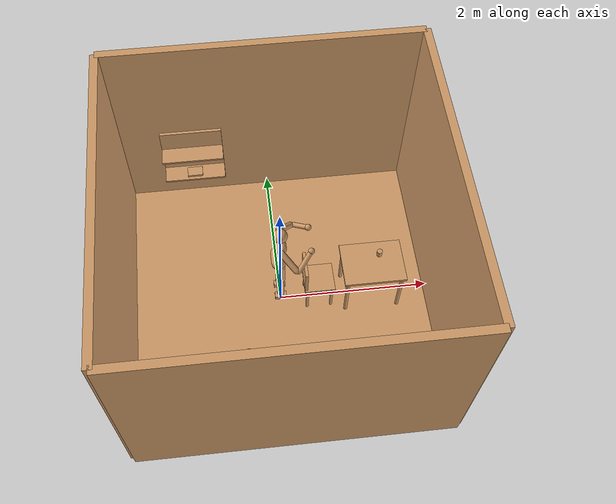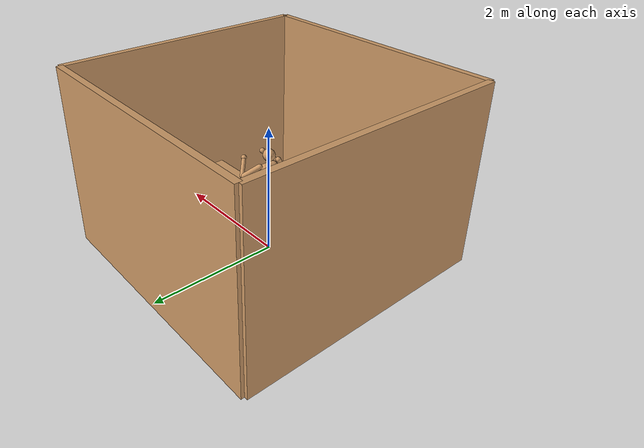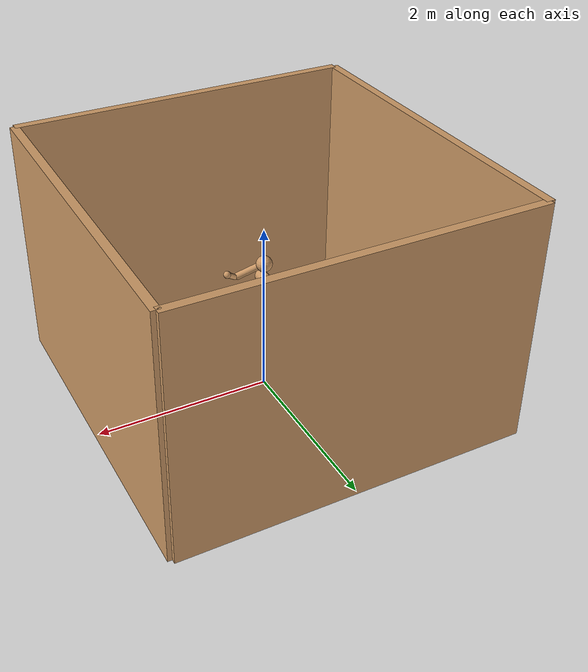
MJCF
<mujoco model="jack_room">

  <!-- COMPILER & SIMULATION OPTIONS                            -->
  <compiler angle="radian" inertiafromgeom="true"/>

  <option integrator="RK4" iterations="50" solver="PGS" timestep="0.002">
    <flag warmstart="enable"/>
  </option>

  <size nkey="5" nuser_geom="1"/>

  <!-- DEFAULTS                                                 -->
  <default>
    <joint armature="1" damping="1" limited="true"/>
    <geom conaffinity="1" condim="3" friction="1 0.5 0.5" margin="0.001"
          material="geom" rgba="0.8 0.6 0.4 1"/>
    <motor ctrllimited="true" ctrlrange="-0.4 0.4"/>
  </default>

  <!-- VISUAL SETTINGS (shadows, reflections, warm tones)       -->
  <visual>
    <map fogend="10" fogstart="6" znear="0.01"/>
    <quality shadowsize="4096" offsamples="8"/>
    <global offwidth="1280" offheight="720"/>
    <rgba haze="0.35 0.3 0.25 1"/>
  </visual>

  <!-- ASSETS (textures & materials)                            -->
  <asset>
    <!-- Sky -->
    <texture builtin="gradient" height="256" rgb1="0.6 0.7 0.9"
             rgb2="0.15 0.15 0.3" type="skybox" width="256"/>

    <!-- Humanoid skin texture -->
    <texture builtin="flat" height="1024" mark="cross" markrgb="1 1 1"
             name="texgeom" random="0.01" rgb1="0.8 0.6 0.4"
             rgb2="0.8 0.6 0.4" type="cube" width="127"/>

    <!-- Floor - warm wood-like checker -->
    <texture builtin="checker" height="256" name="texfloor"
             rgb1="0.55 0.35 0.2" rgb2="0.45 0.28 0.15"
             type="2d" width="256"/>

    <!-- Wall texture -->
    <texture builtin="flat" height="256" name="texwall"
             rgb1="0.92 0.9 0.85" rgb2="0.88 0.86 0.8"
             type="2d" width="256"/>

    <!-- Furniture texture -->
    <texture builtin="flat" height="128" name="texwood"
             rgb1="0.55 0.35 0.18" rgb2="0.5 0.3 0.15"
             type="2d" width="128"/>

    <!-- Materials -->
    <material name="geom" texture="texgeom" texuniform="true"/>
    <material name="floor_mat" texture="texfloor" texrepeat="8 8"
              reflectance="0.15" shininess="0.3" specular="0.3"/>
    <material name="wall_mat" texture="texwall" texrepeat="4 4"
              reflectance="0.05" shininess="0.1" specular="0.1"
              rgba="0.92 0.9 0.85 0.35"/>
    <material name="wood_mat" texture="texwood" texrepeat="2 2"
              reflectance="0.1" shininess="0.4" specular="0.3"/>
    <material name="metal_mat" rgba="0.5 0.5 0.55 1"
              reflectance="0.3" shininess="0.8" specular="0.7"/>
    <material name="cup_mat" rgba="0.95 0.95 0.98 1"
              reflectance="0.1" shininess="0.5" specular="0.4"/>
    <material name="ball_mat" rgba="0.85 0.2 0.15 1"
              reflectance="0.05" shininess="0.3" specular="0.2"/>
    <material name="book_mat" rgba="0.15 0.3 0.55 1"
              reflectance="0.05" shininess="0.2" specular="0.1"/>
    <material name="shelf_mat" rgba="0.6 0.38 0.2 1"
              reflectance="0.1" shininess="0.3" specular="0.2"/>
  </asset>

  <!-- WORLDBODY                                                -->
  <worldbody>

    <!-- ==================== LIGHTING ======================== -->
    <!-- Main overhead light (warm white) -->
    <light name="overhead" directional="true" pos="0 0 4"
           dir="0 0 -1" diffuse="1.0 0.95 0.85" specular="0.3 0.28 0.25"
           ambient="0.15 0.13 0.1" cutoff="100" exponent="1"/>

    <!-- Fill light from the side (softer, warm) -->
    <light name="fill_left" pos="-2 2 2.5" dir="1 -1 -0.5"
           diffuse="0.4 0.35 0.25" specular="0.1 0.08 0.06"
           cutoff="60" exponent="5"/>

    <!-- Accent light from the opposite side -->
    <light name="fill_right" pos="2 -2 2.5" dir="-1 1 -0.5"
           diffuse="0.3 0.28 0.2" specular="0.08 0.06 0.04"
           cutoff="60" exponent="5"/>

    <!-- ==================== CAMERAS ========================= -->
    <!-- Default room view: standing back in a corner looking in -->
    <camera name="room_view" pos="3.5 -3.5 2.5" xyaxes="0.7 0.7 0 -0.2 0.2 0.95"
            fovy="60"/>

    <!-- Overhead bird's-eye view -->
    <camera name="overhead_view" pos="0 0 5.5" xyaxes="1 0 0 0 1 0"
            fovy="70"/>

    <!-- Close-up face view (for observing the humanoid) -->
    <camera name="face_view" pos="0.6 -0.8 1.6" xyaxes="0.8 0.6 0 -0.15 0.2 0.97"
            fovy="40"/>

    <!-- ==================== FLOOR ============================ -->
    <!-- Room floor (4m x 4m wooden floor) -->
    <geom name="floor" type="plane" size="2 2 0.05" pos="0 0 0"
          material="floor_mat" conaffinity="1" condim="3"
          friction="1 0.5 0.5"/>

    <!-- ==================== WALLS ============================ -->
    <!-- Walls are semi-transparent so the camera can see through them.
         They provide visual boundaries but don't block the view. -->

    <!-- North wall (y = +2) -->
    <geom name="wall_north" type="box" size="2 0.05 1.4" pos="0 2 1.4"
          material="wall_mat" conaffinity="0" contype="0"/>

    <!-- South wall (y = -2) -->
    <geom name="wall_south" type="box" size="2 0.05 1.4" pos="0 -2 1.4"
          material="wall_mat" conaffinity="0" contype="0"/>

    <!-- East wall (x = +2) -->
    <geom name="wall_east" type="box" size="0.05 2 1.4" pos="2 0 1.4"
          material="wall_mat" conaffinity="0" contype="0"/>

    <!-- West wall (x = -2) -->
    <geom name="wall_west" type="box" size="0.05 2 1.4" pos="-2 0 1.4"
          material="wall_mat" conaffinity="0" contype="0"/>

    <!-- FURNITURE                                              -->

    <!-- ==================== TABLE ============================ -->
    <!-- A simple wooden table: tabletop + 4 legs.
         Positioned at x=1.2 y=0, height 0.72m (standard desk height). -->
    <body name="table" pos="1.2 0 0">
      <!-- Tabletop -->
      <geom name="table_top" type="box" size="0.4 0.3 0.02"
            pos="0 0 0.72" material="wood_mat" mass="8"/>
      <!-- Legs -->
      <geom name="table_leg_1" type="cylinder" size="0.025 0.35"
            pos="0.35 0.25 0.35" material="wood_mat"/>
      <geom name="table_leg_2" type="cylinder" size="0.025 0.35"
            pos="0.35 -0.25 0.35" material="wood_mat"/>
      <geom name="table_leg_3" type="cylinder" size="0.025 0.35"
            pos="-0.35 0.25 0.35" material="wood_mat"/>
      <geom name="table_leg_4" type="cylinder" size="0.025 0.35"
            pos="-0.35 -0.25 0.35" material="wood_mat"/>
    </body>

    <!-- ==================== CHAIR ============================ -->
    <!-- A simple chair: seat + backrest + 4 legs.
         Positioned near the table, facing it. Seat height ~0.45m. -->
    <body name="chair" pos="0.5 0 0">
      <!-- Seat -->
      <geom name="chair_seat" type="box" size="0.2 0.2 0.015"
            pos="0 0 0.45" material="wood_mat" mass="4"/>
      <!-- Backrest -->
      <geom name="chair_back" type="box" size="0.02 0.18 0.2"
            pos="-0.18 0 0.65" material="wood_mat"/>
      <!-- Legs -->
      <geom name="chair_leg_1" type="cylinder" size="0.02 0.225"
            pos="0.16 0.16 0.225" material="wood_mat"/>
      <geom name="chair_leg_2" type="cylinder" size="0.02 0.225"
            pos="0.16 -0.16 0.225" material="wood_mat"/>
      <geom name="chair_leg_3" type="cylinder" size="0.02 0.225"
            pos="-0.16 0.16 0.225" material="wood_mat"/>
      <geom name="chair_leg_4" type="cylinder" size="0.02 0.225"
            pos="-0.16 -0.16 0.225" material="wood_mat"/>
    </body>

    <!-- ==================== SHELF ============================ -->
    <!-- Wall-mounted shelf with 2 tiers.
         Against the north wall at y=1.7, two shelf planks. -->
    <body name="shelf" pos="-1.0 1.7 0">
      <!-- Shelf support (back panel) -->
      <geom name="shelf_back" type="box" size="0.4 0.02 0.5"
            pos="0 0 1.1" material="shelf_mat" mass="3"/>
      <!-- Lower shelf plank (height ~0.9m) -->
      <geom name="shelf_lower" type="box" size="0.4 0.15 0.012"
            pos="0 -0.1 0.9" material="shelf_mat" mass="1.5"/>
      <!-- Upper shelf plank (height ~1.3m) -->
      <geom name="shelf_upper" type="box" size="0.4 0.15 0.012"
            pos="0 -0.1 1.3" material="shelf_mat" mass="1.5"/>
    </body>

    <!-- INTERACTIVE OBJECTS (free joints - can be moved)       -->

    <!-- ==================== CUP ============================== -->
    <!-- A ceramic cup on the table. Mass: 0.2 kg.
         Small cylinder, can be picked up and moved. -->
    <body name="cup" pos="1.3 0.1 0.79">
      <freejoint name="cup_joint"/>
      <geom name="cup_body" type="cylinder" size="0.035 0.045"
            material="cup_mat" mass="0.2"/>
      <site name="cup_grasp" pos="0 0 0.02" size="0.008"
            rgba="0 1 0 0"/>
    </body>

    <!-- ==================== BALL ============================== -->
    <!-- A red rubber ball on the floor. Mass: 0.1 kg.
         Can be pushed, kicked, or picked up. -->
    <body name="ball" pos="-0.5 -0.8 0.06">
      <freejoint name="ball_joint"/>
      <geom name="ball_body" type="sphere" size="0.06"
            material="ball_mat" mass="0.1"/>
    </body>

    <!-- ==================== BOOK ============================== -->
    <!-- A book resting on the lower shelf. Mass: 0.5 kg.
         Flat box shape, can be picked up. -->
    <body name="book" pos="-1.0 1.55 0.94">
      <freejoint name="book_joint"/>
      <geom name="book_body" type="box" size="0.1 0.07 0.015"
            material="book_mat" mass="0.5"/>
    </body>

    <!-- HUMANOID (Gymnasium Humanoid-v5, 21 actuators)         -->
    <!-- Standard MuJoCo humanoid body structure.               -->
    <!-- Spawns in the center of the room, standing upright.    -->
    <!-- Joint ranges are in radians (compiler angle=radian).   -->
    <body name="torso" pos="0 0 1.4">
      <!-- Tracking camera attached to torso -->
      <camera name="track" mode="trackcom" pos="0 -3 0.3"
              xyaxes="1 0 0 0 0 1"/>

      <!-- Free joint: 6-DOF root (translation + rotation) -->
      <joint armature="0" damping="0" limited="false" name="root"
             pos="0 0 0" stiffness="0" type="free"/>

      <!-- Torso geometry -->
      <geom fromto="0 -0.07 0 0 0.07 0" name="torso1"
            size="0.07" type="capsule"/>
      <geom name="head" pos="0 0 0.19" size="0.09" type="sphere"/>
      <!-- Jack's eyes: first-person cameras on the head -->
      <!-- These are what Jack "sees" - rendered for the vision encoder -->
      <camera name="eye_left" pos="-0.03 0.08 0.19" xyaxes="1 0 0 0 0.3 0.95"
              fovy="60"/>
      <camera name="eye_right" pos="0.03 0.08 0.19" xyaxes="1 0 0 0 0.3 0.95"
              fovy="60"/>
      <!-- Single combined eye (simpler, used by default) -->
      <camera name="eye" pos="0 0.09 0.19" xyaxes="1 0 0 0 0.3 0.95"
              fovy="70"/>
      <geom fromto="-0.01 -0.06 -0.12 -0.01 0.06 -0.12" name="uwaist"
            size="0.06" type="capsule"/>

      <!-- ============ LOWER TORSO ============ -->
      <body name="lwaist" pos="-0.01 0 -0.16">
        <geom fromto="0 -0.06 0 0 0.06 0" name="lwaist"
              size="0.06" type="capsule"/>
        <joint armature="0.02" axis="0 0 1" damping="5" name="abdomen_z"
               pos="0 0 0.065" range="-0.7854 0.7854"
               stiffness="20" type="hinge"/>
        <joint armature="0.02" axis="0 1 0" damping="5" name="abdomen_y"
               pos="0 0 0.065" range="-1.3090 0.5236"
               stiffness="10" type="hinge"/>

        <!-- ============ PELVIS ============ -->
        <body name="pelvis" pos="0 0 -0.165">
          <joint armature="0.02" axis="1 0 0" damping="5" name="abdomen_x"
                 pos="0 0 0.1" range="-0.6109 0.6109"
                 stiffness="10" type="hinge"/>
          <geom fromto="-0.02 -0.07 0 -0.02 0.07 0" name="butt"
                size="0.09" type="capsule"/>

          <!-- ============ RIGHT LEG ============ -->
          <body name="right_thigh" pos="0 -0.1 -0.04">
            <joint armature="0.01" axis="1 0 0" damping="5"
                   name="right_hip_x" pos="0 0 0"
                   range="-0.4363 0.0873" stiffness="10" type="hinge"/>
            <joint armature="0.01" axis="0 0 1" damping="5"
                   name="right_hip_z" pos="0 0 0"
                   range="-1.0472 0.6109" stiffness="10" type="hinge"/>
            <joint armature="0.01" axis="0 1 0" damping="5"
                   name="right_hip_y" pos="0 0 0"
                   range="-2.0944 0.3491" stiffness="20" type="hinge"/>
            <geom fromto="0 0 0 0 0.01 -0.34" name="right_thigh1"
                  size="0.06" type="capsule"/>

            <body name="right_shin" pos="0 0.01 -0.403">
              <joint armature="0.006" axis="0 -1 0" damping="6"
                     name="right_knee" pos="0 0 0.02"
                     range="-2.7925 -0.0349" stiffness="15" type="hinge"/>
              <geom fromto="0 0 0 0 0 -0.3" name="right_shin1"
                    size="0.049" type="capsule"/>

              <body name="right_foot" pos="0 0 -0.39">
                <joint armature="0.004" axis="0 1 0" damping="3"
                       name="right_ankle_y" pos="0 0 0.08"
                       range="-0.8727 0.8727" stiffness="4" type="hinge"/>
                <joint armature="0.004" axis="1 0 0.5" damping="1"
                       name="right_ankle_x" pos="0 0 0.04"
                       range="-0.8727 0.8727" stiffness="1" type="hinge"/>
                <geom name="right_foot" pos="0 0 0"
                      size="0.075 0.04 0.03" type="box"/>
              </body>
            </body>
          </body>

          <!-- ============ LEFT LEG ============ -->
          <body name="left_thigh" pos="0 0.1 -0.04">
            <joint armature="0.01" axis="-1 0 0" damping="5"
                   name="left_hip_x" pos="0 0 0"
                   range="-0.4363 0.0873" stiffness="10" type="hinge"/>
            <joint armature="0.01" axis="0 0 -1" damping="5"
                   name="left_hip_z" pos="0 0 0"
                   range="-1.0472 0.6109" stiffness="10" type="hinge"/>
            <joint armature="0.01" axis="0 1 0" damping="5"
                   name="left_hip_y" pos="0 0 0"
                   range="-2.0944 0.3491" stiffness="20" type="hinge"/>
            <geom fromto="0 0 0 0 -0.01 -0.34" name="left_thigh1"
                  size="0.06" type="capsule"/>

            <body name="left_shin" pos="0 -0.01 -0.403">
              <joint armature="0.006" axis="0 -1 0" damping="6"
                     name="left_knee" pos="0 0 0.02"
                     range="-2.7925 -0.0349" stiffness="15" type="hinge"/>
              <geom fromto="0 0 0 0 0 -0.3" name="left_shin1"
                    size="0.049" type="capsule"/>

              <body name="left_foot" pos="0 0 -0.39">
                <joint armature="0.004" axis="0 1 0" damping="3"
                       name="left_ankle_y" pos="0 0 0.08"
                       range="-0.8727 0.8727" stiffness="4" type="hinge"/>
                <joint armature="0.004" axis="1 0 0.5" damping="1"
                       name="left_ankle_x" pos="0 0 0.04"
                       range="-0.8727 0.8727" stiffness="1" type="hinge"/>
                <geom name="left_foot" pos="0 0 0"
                      size="0.075 0.04 0.03" type="box"/>
              </body>
            </body>
          </body>
        </body>
      </body>

      <!-- ============ RIGHT ARM ============ -->
      <body name="right_upper_arm" pos="0 -0.17 0.06">
        <joint armature="0.004" axis="2 1 1" damping="1"
               name="right_shoulder1" pos="0 0 0"
               range="-1.4835 1.0472" stiffness="1" type="hinge"/>
        <joint armature="0.004" axis="0 -1 1" damping="1"
               name="right_shoulder2" pos="0 0 0"
               range="-1.4835 1.0472" stiffness="1" type="hinge"/>
        <geom fromto="0 0 0 0.16 -0.16 -0.16" name="right_uarm1"
              size="0.04" type="capsule"/>

        <body name="right_lower_arm" pos="0.18 -0.18 -0.18">
          <joint armature="0.004" axis="0 -1 1" damping="0.5"
                 name="right_elbow" pos="0 0 0"
                 range="-1.5708 0.8727" stiffness="0.5" type="hinge"/>
          <geom fromto="0.01 0.01 0.01 0.17 0.17 0.17" name="right_larm"
                size="0.031" type="capsule"/>
          <geom name="right_hand" pos="0.18 0.18 0.18"
                size="0.04" type="sphere"/>
        </body>
      </body>

      <!-- ============ LEFT ARM ============ -->
      <body name="left_upper_arm" pos="0 0.17 0.06">
        <joint armature="0.004" axis="2 -1 1" damping="1"
               name="left_shoulder1" pos="0 0 0"
               range="-1.0472 1.4835" stiffness="1" type="hinge"/>
        <joint armature="0.004" axis="0 1 1" damping="1"
               name="left_shoulder2" pos="0 0 0"
               range="-1.0472 1.4835" stiffness="1" type="hinge"/>
        <geom fromto="0 0 0 0.16 0.16 -0.16" name="left_uarm1"
              size="0.04" type="capsule"/>

        <body name="left_lower_arm" pos="0.18 0.18 -0.18">
          <joint armature="0.004" axis="0 -1 -1" damping="0.5"
                 name="left_elbow" pos="0 0 0"
                 range="-1.5708 0.8727" stiffness="0.5" type="hinge"/>
          <geom fromto="0.01 -0.01 0.01 0.17 -0.17 0.17" name="left_larm"
                size="0.031" type="capsule"/>
          <geom name="left_hand" pos="0.18 -0.18 0.18"
                size="0.04" type="sphere"/>
        </body>
      </body>
    </body>
  </worldbody>

  <!-- ACTUATORS (21 motors - Humanoid-v5 compatible)           -->
  <!-- Order matches the standard MuJoCo Humanoid body:         -->
  <!--   0-2:   abdomen  (y, z, x)                             -->
  <!--   3-8:   right leg (hip_x, hip_z, hip_y, knee,          -->
  <!--          ankle_x, ankle_y)                               -->
  <!--   9-14:  left leg  (hip_x, hip_z, hip_y, knee,          -->
  <!--          ankle_x, ankle_y)                               -->
  <!--   15-17: right arm (shoulder1, shoulder2, elbow)         -->
  <!--   18-20: left arm  (shoulder1, shoulder2, elbow)         -->
  <actuator>
    <!-- Abdomen (3 actuators) -->
    <motor gear="100" joint="abdomen_y"  name="abdomen_y"/>
    <motor gear="100" joint="abdomen_z"  name="abdomen_z"/>
    <motor gear="100" joint="abdomen_x"  name="abdomen_x"/>

    <!-- Right leg (6 actuators) -->
    <motor gear="100" joint="right_hip_x"    name="right_hip_x"/>
    <motor gear="100" joint="right_hip_z"    name="right_hip_z"/>
    <motor gear="300" joint="right_hip_y"    name="right_hip_y"/>
    <motor gear="200" joint="right_knee"     name="right_knee"/>
    <motor gear="100" joint="right_ankle_x"  name="right_ankle_x"/>
    <motor gear="100" joint="right_ankle_y"  name="right_ankle_y"/>

    <!-- Left leg (6 actuators) -->
    <motor gear="100" joint="left_hip_x"    name="left_hip_x"/>
    <motor gear="100" joint="left_hip_z"    name="left_hip_z"/>
    <motor gear="300" joint="left_hip_y"    name="left_hip_y"/>
    <motor gear="200" joint="left_knee"     name="left_knee"/>
    <motor gear="100" joint="left_ankle_x"  name="left_ankle_x"/>
    <motor gear="100" joint="left_ankle_y"  name="left_ankle_y"/>

    <!-- Right arm (3 actuators) -->
    <motor gear="25"  joint="right_shoulder1" name="right_shoulder1"/>
    <motor gear="25"  joint="right_shoulder2" name="right_shoulder2"/>
    <motor gear="25"  joint="right_elbow"     name="right_elbow"/>

    <!-- Left arm (3 actuators) -->
    <motor gear="25"  joint="left_shoulder1"  name="left_shoulder1"/>
    <motor gear="25"  joint="left_shoulder2"  name="left_shoulder2"/>
    <motor gear="25"  joint="left_elbow"      name="left_elbow"/>
  </actuator>

</mujoco>
